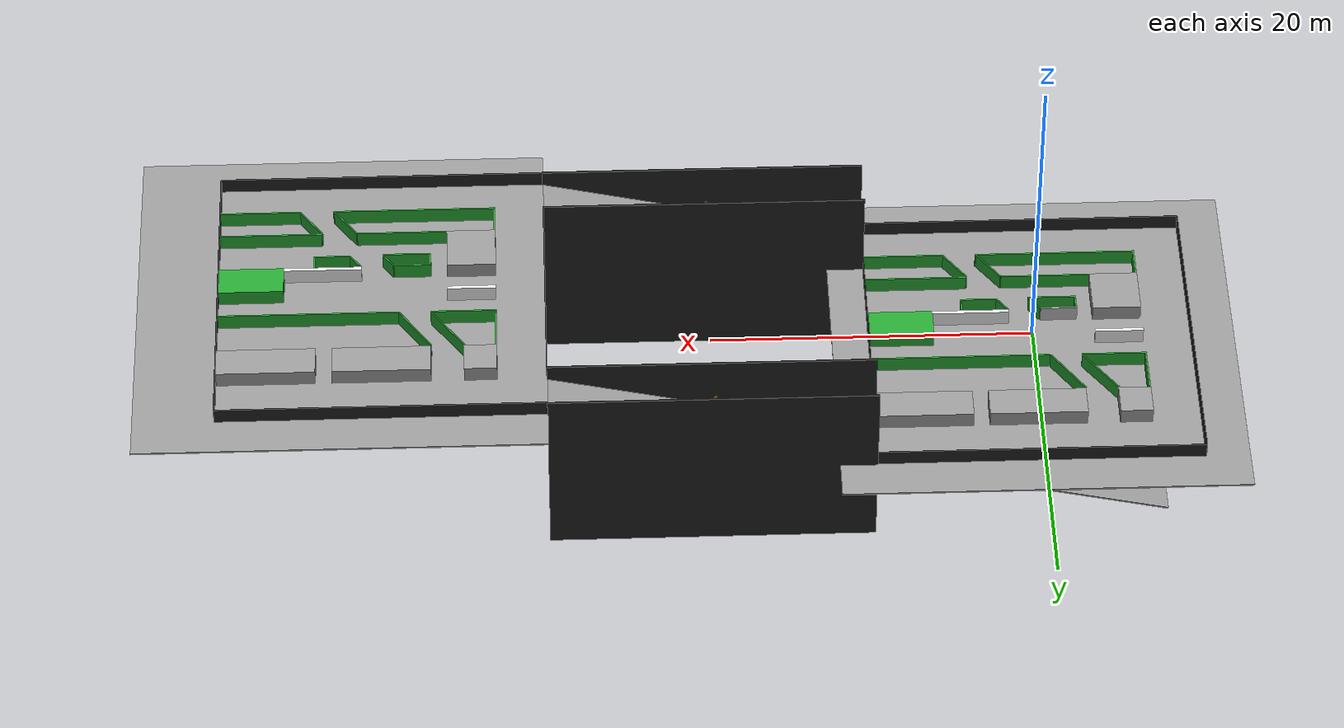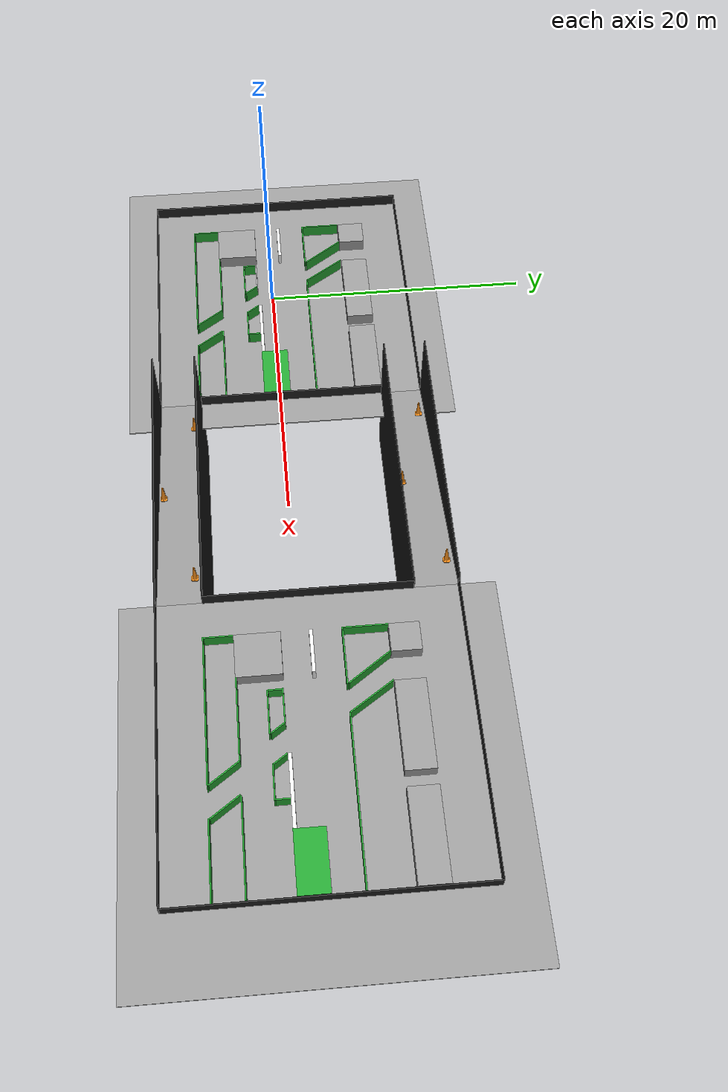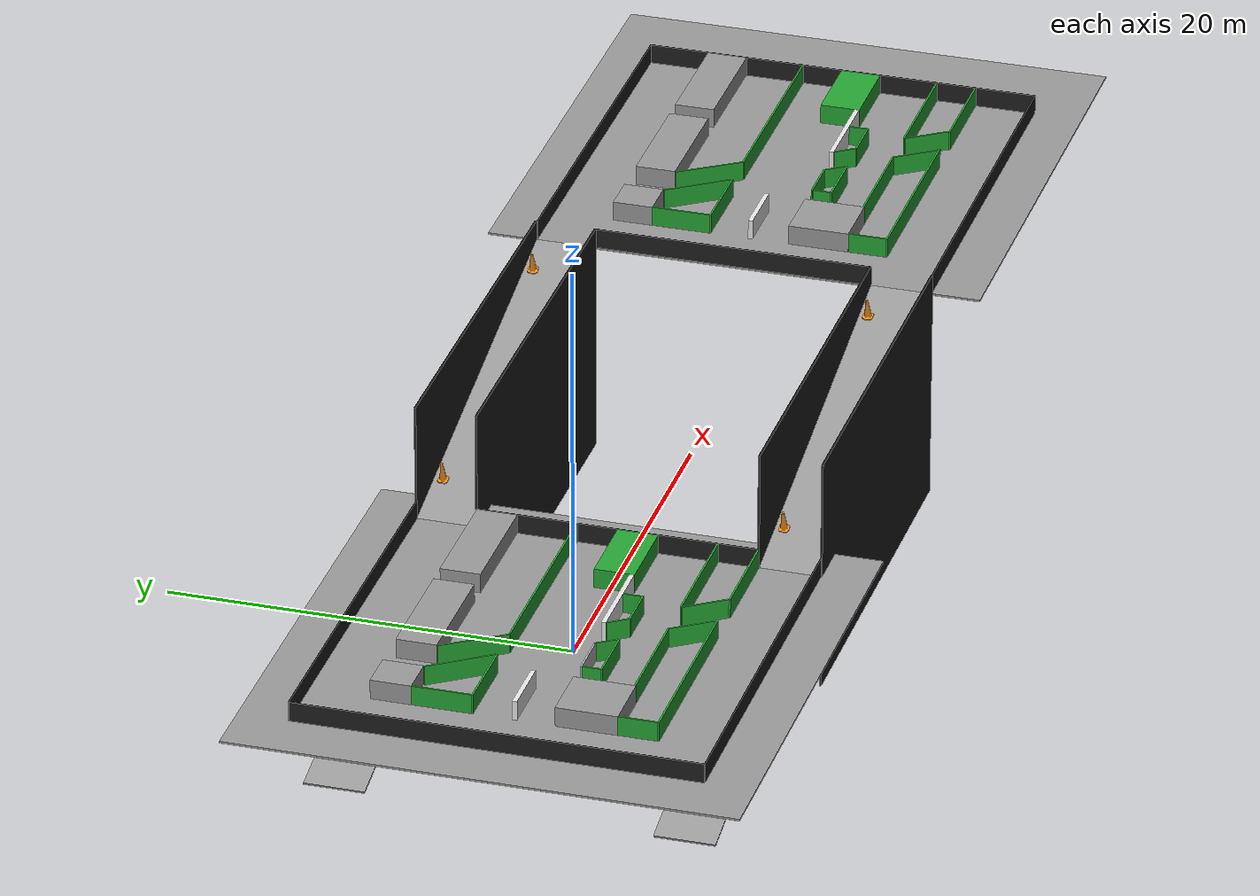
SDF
<?xml version="1.0"?>
<sdf version="1.6">
  <world name="default">
    <include>
      <uri>model://sun</uri>
    </include>
    <scene>
      <grid>true</grid>
      <shadows>false</shadows>
    </scene>

    <!-- orange_world model -->
    <include>
      <pose>0 0 0 0 0 0</pose>
      <uri>model://orange_world</uri>
      <name>orange_world</name>
    </include>
  </world>
</sdf>

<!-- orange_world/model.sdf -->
<sdf version="1.6">
  <model name="orange_world">
    <static>true</static>
    <!--first floor-->
    <link name="first_floor_ground">
      <pose>0 0.86 -0.05 0 0 0</pose>
      <visual name="visual">
        <geometry>
          <box>
            <size>25 25 0.1</size>
          </box>
        </geometry>
        <material>
          <script>
            <uri>file://media/materials/scripts/gazebo.material</uri>
            <name>Gazebo/Grey</name>
          </script>
        </material>
      </visual>
      <collision name="collision">
        <geometry>
          <box>
            <size>25 25 0.1</size>
          </box>
        </geometry>
        <surface>
          <friction>
            <ode>
              <mu>100</mu>
              <mu2>50</mu2>
            </ode>
          </friction>
          <bounce/>
          <contact>
            <ode/>
          </contact>
        </surface>
      </collision>
    </link>
    <link name="first_floor_wall1">
      <pose>7.1833 6.83868 0.5 0 0 0</pose>
      <visual name="visual">
        <geometry>
          <box>
            <size>5.99691 2.01004 1</size>
          </box>
        </geometry>
        <material>
          <script>
            <uri>file://media/materials/scripts/gazebo.material</uri>
            <name>Gazebo/Grey</name>
          </script>
        </material>
      </visual>
      <collision name="collision">
        <geometry>
          <box>
            <size>5.99691 2.01004 1</size>
          </box>
        </geometry>
      </collision>
    </link>
    <link name="first_floor_wall2">
      <pose>0.188308 6.83744 0.5 0 0 0</pose>
      <visual name="visual">
        <geometry>
          <box>
            <size>5.99691 2.01004 1</size>
          </box>
        </geometry>
        <material>
          <script>
            <uri>file://media/materials/scripts/gazebo.material</uri>
            <name>Gazebo/Grey</name>
          </script>
        </material>
      </visual>
      <collision name="collision">
        <geometry>
          <box>
            <size>5.99691 2.01004 1</size>
          </box>
        </geometry>
      </collision>
    </link>
    <link name="first_floor_wall3">
      <pose>-5.80476 6.84678 0.5 0 0 0</pose>
      <visual name="visual">
        <geometry>
          <box>
            <size>1.98724 2.01004 1</size>
          </box>
        </geometry>
        <material>
          <script>
            <uri>file://media/materials/scripts/gazebo.material</uri>
            <name>Gazebo/Grey</name>
          </script>
        </material>
      </visual>
      <collision name="collision">
        <geometry>
          <box>
            <size>1.98724 2.01004 1</size>
          </box>
        </geometry>
      </collision>
    </link>
    <link name="first_floor_wall4">
      <pose>8.18517 -0.162337 0.5 0 0 0</pose>
      <visual name="visual">
        <geometry>
          <box>
            <size>3.98346 2.01004 1</size>
          </box>
        </geometry>
        <material>
          <script>
            <uri>file://media/materials/scripts/gazebo.material</uri>
            <name>Gazebo/Green</name>
          </script>
        </material>
      </visual>
      <collision name="collision">
        <geometry>
          <box>
            <size>3.98346 2.01004 1</size>
          </box>
        </geometry>
      </collision>
    </link>
    <link name="first_floor_wall5">
      <pose>-5.30731 -2.64384 0.5 0 0 0</pose>
      <visual name="visual">
        <geometry>
          <box>
            <size>2.9898 3.03101 1</size>
          </box>
        </geometry>
        <material>
          <script>
            <uri>file://media/materials/scripts/gazebo.material</uri>
            <name>Gazebo/Grey</name>
          </script>
        </material>
      </visual>
      <collision name="collision">
        <geometry>
          <box>
            <size>2.9898 3.03101 1</size>
          </box>
        </geometry>
      </collision>
    </link>
    <link name="first_floor_wall6">
      <pose>-5.29666 0.826818 0.5 0 0 0</pose>
      <visual name="visual">
        <geometry>
          <box>
            <size>2.99398 0.232517 1</size>
          </box>
        </geometry>
        <material>
          <script>
            <uri>file://media/materials/scripts/gazebo.material</uri>
            <name>Gazebo/White</name>
          </script>
        </material>
      </visual>
      <collision name="collision">
        <geometry>
          <box>
            <size>2.99398 0.232517 1</size>
          </box>
        </geometry>
      </collision>
    </link>
    <link name="first_floor_wall7">
      <pose>3.81811 -1.03684 0.5 0 0 0</pose>
      <visual name="visual">
        <geometry>
          <box>
            <size>4.76615 0.232517 1</size>
          </box>
        </geometry>
        <material>
          <script>
            <uri>file://media/materials/scripts/gazebo.material</uri>
            <name>Gazebo/White</name>
          </script>
        </material>
      </visual>
      <collision name="collision">
        <geometry>
          <box>
            <size>4.76615 0.232517 1</size>
          </box>
        </geometry>
      </collision>
    </link>
    <link name="first_floor_wall8">
      <pose>4.67148 2.87704 0.5 0 0 0</pose>
      <visual name="visual">
        <geometry>
          <box>
            <size>11.008 0.087484 1</size>
          </box>
        </geometry>
        <material>
          <script>
            <uri>file://media/materials/scripts/gazebo.material</uri>
            <name>Gazebo/Green</name>
          </script>
        </material>
      </visual>
      <collision name="collision">
        <geometry>
          <box>
            <size>11.008 0.087484 1</size>
          </box>
        </geometry>
      </collision>
    </link>
    <link name="first_floor_wall9">
      <pose>-1.79832 -6.1092 0.5 0 0 0</pose>
      <visual name="visual">
        <geometry>
          <box>
            <size>10.003 0.087484 1</size>
          </box>
        </geometry>
        <material>
          <script>
            <uri>file://media/materials/scripts/gazebo.material</uri>
            <name>Gazebo/Green</name>
          </script>
        </material>
      </visual>
      <collision name="collision">
        <geometry>
          <box>
            <size>10.003 0.087484 1</size>
          </box>
        </geometry>
      </collision>
    </link>
    <link name="first_floor_wall10">
      <pose>7.68827 -6.11267 0.5 0 0 0</pose>
      <visual name="visual">
        <geometry>
          <box>
            <size>5.0278 0.087484 1</size>
          </box>
        </geometry>
        <material>
          <script>
            <uri>file://media/materials/scripts/gazebo.material</uri>
            <name>Gazebo/Green</name>
          </script>
        </material>
      </visual>
      <collision name="collision">
        <geometry>
          <box>
            <size>5.0278 0.087484 1</size>
          </box>
        </geometry>
      </collision>
    </link>
    <link name="first_floor_wall11">
      <pose>-4.81822 2.87687 0.5 0 0 0</pose>
      <visual name="visual">
        <geometry>
          <box>
            <size>3.98917 0.087484 1</size>
          </box>
        </geometry>
        <material>
          <script>
            <uri>file://media/materials/scripts/gazebo.material</uri>
            <name>Gazebo/Green</name>
          </script>
        </material>
      </visual>
      <collision name="collision">
        <geometry>
          <box>
            <size>3.98917 0.087484 1</size>
          </box>
        </geometry>
      </collision>
    </link>
    <link name="first_floor_wall12">
      <pose>-6.7515 -5.11034 0.5 0 0 -1.57059</pose>
      <visual name="visual">
        <geometry>
          <box>
            <size>1.91856 0.087484 1</size>
          </box>
        </geometry>
        <material>
          <script>
            <uri>file://media/materials/scripts/gazebo.material</uri>
            <name>Gazebo/Green</name>
          </script>
        </material>
      </visual>
      <collision name="collision">
        <geometry>
          <box>
            <size>1.91856 0.087484 1</size>
          </box>
        </geometry>
      </collision>
    </link>
    <link name="first_floor_wall13">
      <pose>3.24783 -2.11041 0.5 0 0 0</pose>
      <visual name="visual">
        <geometry>
          <box>
            <size>2.27943 0.087484 1</size>
          </box>
        </geometry>
        <material>
          <script>
            <uri>file://media/materials/scripts/gazebo.material</uri>
            <name>Gazebo/Green</name>
          </script>
        </material>
      </visual>
      <collision name="collision">
        <geometry>
          <box>
            <size>2.27943 0.087484 1</size>
          </box>
        </geometry>
      </collision>
    </link>
    <link name="first_floor_wall14">
      <pose>-1.69806 -1.20496 0.5 0 0 0</pose>
      <visual name="visual">
        <geometry>
          <box>
            <size>2.27943 0.087484 1</size>
          </box>
        </geometry>
      </visual>
      <collision name="collision">
        <geometry>
          <box>
            <size>2.27943 0.087484 1</size>
          </box>
        </geometry>
      </collision>
    </link>
    <link name="first_floor_wall15">
      <pose>-1.33218 -2.18828 0.5 0 0 0</pose>
      <visual name="visual">
        <geometry>
          <box>
            <size>2.95324 0.087484 1</size>
          </box>
        </geometry>
        <material>
          <script>
            <uri>file://media/materials/scripts/gazebo.material</uri>
            <name>Gazebo/Green</name>
          </script>
        </material>
      </visual>
      <collision name="collision">
        <geometry>
          <box>
            <size>2.95324 0.087484 1</size>
          </box>
        </geometry>
      </collision>
    </link>
    <link name="first_floor_wall16">
      <pose>-6.75403 4.38074 0.5 0 0 -1.57059</pose>
      <visual name="visual">
        <geometry>
          <box>
            <size>2.91475 0.087484 1</size>
          </box>
        </geometry>
        <material>
          <script>
            <uri>file://media/materials/scripts/gazebo.material</uri>
            <name>Gazebo/Green</name>
          </script>
        </material>
      </visual>
      <collision name="collision">
        <geometry>
          <box>
            <size>2.91475 0.087484 1</size>
          </box>
        </geometry>
      </collision>
    </link>
    <link name="first_floor_wall17">
      <pose>-3.85392 4.38882 0.5 0 0 -0.954791</pose>
      <visual name="visual">
        <geometry>
          <box>
            <size>3.49253 0.087484 1</size>
          </box>
        </geometry>
        <material>
          <script>
            <uri>file://media/materials/scripts/gazebo.material</uri>
            <name>Gazebo/Green</name>
          </script>
        </material>
      </visual>
      <collision name="collision">
        <geometry>
          <box>
            <size>3.49253 0.087484 1</size>
          </box>
        </geometry>
      </collision>
    </link>
    <link name="first_floor_wall18">
      <pose>-2.77675 -1.68969 0.5 0 0 -1.57059</pose>
      <visual name="visual">
        <geometry>
          <box>
            <size>0.888064 0.087484 1</size>
          </box>
        </geometry>
        <material>
          <script>
            <uri>file://media/materials/scripts/gazebo.material</uri>
            <name>Gazebo/Green</name>
          </script>
        </material>
      </visual>
      <collision name="collision">
        <geometry>
          <box>
            <size>0.888064 0.087484 1</size>
          </box>
        </geometry>
      </collision>
    </link>
    <link name="first_floor_wall19">
      <pose>4.33486 -1.60852 0.5 0 0 -1.57059</pose>
      <visual name="visual">
        <geometry>
          <box>
            <size>0.909365 0.087484 1</size>
          </box>
        </geometry>
        <material>
          <script>
            <uri>file://media/materials/scripts/gazebo.material</uri>
            <name>Gazebo/Green</name>
          </script>
        </material>
      </visual>
      <collision name="collision">
        <geometry>
          <box>
            <size>0.909365 0.087484 1</size>
          </box>
        </geometry>
      </collision>
    </link>
    <link name="first_floor_wall20">
      <pose>-1.85013 4.33135 0.5 0 0 -0.979786</pose>
      <visual name="visual">
        <geometry>
          <box>
            <size>3.49253 0.087484 1</size>
          </box>
        </geometry>
        <material>
          <script>
            <uri>file://media/materials/scripts/gazebo.material</uri>
            <name>Gazebo/Green</name>
          </script>
        </material>
      </visual>
      <collision name="collision">
        <geometry>
          <box>
            <size>3.49253 0.087484 1</size>
          </box>
        </geometry>
      </collision>
    </link>
    <link name="first_floor_wall21">
      <pose>4.53184 -5.09431 0.5 0 0 -0.954791</pose>
      <visual name="visual">
        <geometry>
          <box>
            <size>2.3271 0.087484 1</size>
          </box>
        </geometry>
        <material>
          <script>
            <uri>file://media/materials/scripts/gazebo.material</uri>
            <name>Gazebo/Green</name>
          </script>
        </material>
      </visual>
      <collision name="collision">
        <geometry>
          <box>
            <size>2.3271 0.087484 1</size>
          </box>
        </geometry>
      </collision>
    </link>
    <link name="first_floor_wall22">
      <pose>2.42071 -5.07999 0.5 0 0 -0.954791</pose>
      <visual name="visual">
        <geometry>
          <box>
            <size>2.40429 0.087484 1</size>
          </box>
        </geometry>
        <material>
          <script>
            <uri>file://media/materials/scripts/gazebo.material</uri>
            <name>Gazebo/Green</name>
          </script>
        </material>
      </visual>
      <collision name="collision">
        <geometry>
          <box>
            <size>2.40429 0.087484 1</size>
          </box>
        </geometry>
      </collision>
    </link>
    <link name="first_floor_wall23">
      <pose>1.79775 -1.6274 0.5 0 0 -0.954791</pose>
      <visual name="visual">
        <geometry>
          <box>
            <size>1.12858 0.087484 1</size>
          </box>
        </geometry>
        <material>
          <script>
            <uri>file://media/materials/scripts/gazebo.material</uri>
            <name>Gazebo/Green</name>
          </script>
        </material>
      </visual>
      <collision name="collision">
        <geometry>
          <box>
            <size>1.12858 0.087484 1</size>
          </box>
        </geometry>
      </collision>
    </link>
    <link name="first_floor_wall24">
      <pose>-0.213803 -1.65841 0.5 0 0 -0.954791</pose>
      <visual name="visual">
        <geometry>
          <box>
            <size>1.12858 0.087484 1</size>
          </box>
        </geometry>
        <material>
          <script>
            <uri>file://media/materials/scripts/gazebo.material</uri>
            <name>Gazebo/Green</name>
          </script>
        </material>
      </visual>
      <collision name="collision">
        <geometry>
          <box>
            <size>1.12858 0.087484 1</size>
          </box>
        </geometry>
      </collision>
    </link>
    <link name="first_floor_wall25">
      <pose>7.04565 -4.10442 0.5 0 0 0</pose>
      <visual name="visual">
        <geometry>
          <box>
            <size>6.27478 0.087484 1</size>
          </box>
        </geometry>
        <material>
          <script>
            <uri>file://media/materials/scripts/gazebo.material</uri>
            <name>Gazebo/Green</name>
          </script>
        </material>
      </visual>
      <collision name="collision">
        <geometry>
          <box>
            <size>6.27478 0.087484 1</size>
          </box>
        </geometry>
      </collision>
    </link>
    <link name="first_floor_wall26">
      <pose>-1.05427 -4.10983 0.5 0 0 0</pose>
      <visual name="visual">
        <geometry>
          <box>
            <size>5.52227 0.087484 1</size>
          </box>
        </geometry>
        <material>
          <script>
            <uri>file://media/materials/scripts/gazebo.material</uri>
            <name>Gazebo/Green</name>
          </script>
        </material>
      </visual>
      <collision name="collision">
        <geometry>
          <box>
            <size>5.52227 0.087484 1</size>
          </box>
        </geometry>
      </collision>
    </link>
    <link name="first_floor_wall27">
      <pose>-9.79546 0.83 0.5 0 0 0</pose>
      <visual name="visual">
        <geometry>
          <box>
            <size>0.043707 20.0311 1</size>
          </box>
        </geometry>
        <material>
          <script>
            <uri>file://media/materials/scripts/gazebo.material</uri>
            <name>Gazebo/Black</name>
          </script>
        </material>
      </visual>
      <collision name="collision">
        <geometry>
          <box>
            <size>0.043707 20.0311 1</size>
          </box>
        </geometry>
      </collision>
    </link>
    <link name="first_floor_wall28">
      <pose>10.2262 0.871969 0.5 0 0 0</pose>
      <visual name="visual">
        <geometry>
          <box>
            <size>0.043707 14.0311 1</size>
          </box>
        </geometry>
        <material>
          <script>
            <uri>file://media/materials/scripts/gazebo.material</uri>
            <name>Gazebo/Black</name>
          </script>
        </material>
      </visual>
      <collision name="collision">
        <geometry>
          <box>
            <size>0.043707 14.0311 1</size>
          </box>
        </geometry>
      </collision>
    </link>
    <link name="first_floor_wall29">
      <pose>0.222936 10.8607 0.5 0 0 -1.57002</pose>
      <visual name="visual">
        <geometry>
          <box>
            <size>0.043707 20.0311 1</size>
          </box>
        </geometry>
        <material>
          <script>
            <uri>file://media/materials/scripts/gazebo.material</uri>
            <name>Gazebo/Black</name>
          </script>
        </material>
      </visual>
      <collision name="collision">
        <geometry>
          <box>
            <size>0.043707 20.0311 1</size>
          </box>
        </geometry>
      </collision>
    </link>
    <link name="first_floor_wall30">
      <pose>0.217485 -9.19083 0.5 0 0 -1.57002</pose>
      <visual name="visual">
        <geometry>
          <box>
            <size>0.043707 20.0311 1</size>
          </box>
        </geometry>
        <material>
          <script>
            <uri>file://media/materials/scripts/gazebo.material</uri>
            <name>Gazebo/Black</name>
          </script>
        </material>
      </visual>
      <collision name="collision">
        <geometry>
          <box>
            <size>0.043707 20.0311 1</size>
          </box>
        </geometry>
      </collision>
    </link>
    <!--second floor-->
    <link name="second_floor_ground">
      <pose>42.6826865 0.86 4.95 0 0 0</pose>
      <visual name="visual">
        <geometry>
          <box>
            <size>25 25 0.1</size>
          </box>
        </geometry>
        <material>
          <script>
            <uri>file://media/materials/scripts/gazebo.material</uri>
            <name>Gazebo/Grey</name>
          </script>
        </material>
      </visual>
      <collision name="collision">
        <geometry>
          <box>
            <size>25 25 0.1</size>
          </box>
        </geometry>
        <surface>
          <friction>
            <ode>
              <mu>100</mu>
              <mu2>50</mu2>
            </ode>
          </friction>
          <bounce/>
          <contact>
            <ode/>
          </contact>
        </surface>
      </collision>
    </link>
    <link name="second_floor_wall1">
      <pose>47.1833 6.83868 5.5 0 0 0</pose>
      <visual name="visual">
        <geometry>
          <box>
            <size>5.99691 2.01004 1</size>
          </box>
        </geometry>
        <material>
          <script>
            <uri>file://media/materials/scripts/gazebo.material</uri>
            <name>Gazebo/Grey</name>
          </script>
        </material>
      </visual>
      <collision name="collision">
        <geometry>
          <box>
            <size>5.99691 2.01004 1</size>
          </box>
        </geometry>
      </collision>
    </link>
    <link name="second_floor_wall2">
      <pose>40.188308 6.83744 5.5 0 0 0</pose>
      <visual name="visual">
        <geometry>
          <box>
            <size>5.99691 2.01004 1</size>
          </box>
        </geometry>
        <material>
          <script>
            <uri>file://media/materials/scripts/gazebo.material</uri>
            <name>Gazebo/Grey</name>
          </script>
        </material>
      </visual>
      <collision name="collision">
        <geometry>
          <box>
            <size>5.99691 2.01004 1</size>
          </box>
        </geometry>
      </collision>
    </link>
    <link name="second_floor_wall3">
      <pose>34.19524 6.84678 5.5 0 0 0</pose>
      <visual name="visual">
        <geometry>
          <box>
            <size>1.98724 2.01004 1</size>
          </box>
        </geometry>
        <material>
          <script>
            <uri>file://media/materials/scripts/gazebo.material</uri>
            <name>Gazebo/Grey</name>
          </script>
        </material>
      </visual>
      <collision name="collision">
        <geometry>
          <box>
            <size>1.98724 2.01004 1</size>
          </box>
        </geometry>
      </collision>
    </link>
    <link name="second_floor_wall4">
      <pose>48.18517 -0.162337 5.5 0 0 0</pose>
      <visual name="visual">
        <geometry>
          <box>
            <size>3.98346 2.01004 1</size>
          </box>
        </geometry>
        <material>
          <script>
            <uri>file://media/materials/scripts/gazebo.material</uri>
            <name>Gazebo/Green</name>
          </script>
        </material>
      </visual>
      <collision name="collision">
        <geometry>
          <box>
            <size>3.98346 2.01004 1</size>
          </box>
        </geometry>
      </collision>
    </link>
    <link name="second_floor_wall5">
      <pose>34.69269 -2.64384 5.5 0 0 0</pose>
      <visual name="visual">
        <geometry>
          <box>
            <size>2.9898 3.03101 1</size>
          </box>
        </geometry>
        <material>
          <script>
            <uri>file://media/materials/scripts/gazebo.material</uri>
            <name>Gazebo/Grey</name>
          </script>
        </material>
      </visual>
      <collision name="collision">
        <geometry>
          <box>
            <size>2.9898 3.03101 1</size>
          </box>
        </geometry>
      </collision>
    </link>
    <link name="second_floor_wall6">
      <pose>34.70334 0.826818 5.5 0 0 0</pose>
      <visual name="visual">
        <geometry>
          <box>
            <size>2.99398 0.232517 1</size>
          </box>
        </geometry>
        <material>
          <script>
            <uri>file://media/materials/scripts/gazebo.material</uri>
            <name>Gazebo/White</name>
          </script>
        </material>
      </visual>
      <collision name="collision">
        <geometry>
          <box>
            <size>2.99398 0.232517 1</size>
          </box>
        </geometry>
      </collision>
    </link>
    <link name="second_floor_wall7">
      <pose>43.81811 -1.03684 5.5 0 0 0</pose>
      <visual name="visual">
        <geometry>
          <box>
            <size>4.76615 0.232517 1</size>
          </box>
        </geometry>
        <material>
          <script>
            <uri>file://media/materials/scripts/gazebo.material</uri>
            <name>Gazebo/White</name>
          </script>
        </material>
      </visual>
      <collision name="collision">
        <geometry>
          <box>
            <size>4.76615 0.232517 1</size>
          </box>
        </geometry>
      </collision>
    </link>
    <link name="second_floor_wall8">
      <pose>44.67148 2.87704 5.5 0 0 0</pose>
      <visual name="visual">
        <geometry>
          <box>
            <size>11.008 0.087484 1</size>
          </box>
        </geometry>
        <material>
          <script>
            <uri>file://media/materials/scripts/gazebo.material</uri>
            <name>Gazebo/Green</name>
          </script>
        </material>
      </visual>
      <collision name="collision">
        <geometry>
          <box>
            <size>11.008 0.087484 1</size>
          </box>
        </geometry>
      </collision>
    </link>
    <link name="second_floor_wall9">
      <pose>38.20168 -6.1092 5.5 0 0 0</pose>
      <visual name="visual">
        <geometry>
          <box>
            <size>10.003 0.087484 1</size>
          </box>
        </geometry>
        <material>
          <script>
            <uri>file://media/materials/scripts/gazebo.material</uri>
            <name>Gazebo/Green</name>
          </script>
        </material>
      </visual>
      <collision name="collision">
        <geometry>
          <box>
            <size>10.003 0.087484 1</size>
          </box>
        </geometry>
      </collision>
    </link>
    <link name="second_floor_wall10">
      <pose>47.68827 -6.11267 5.5 0 0 0</pose>
      <visual name="visual">
        <geometry>
          <box>
            <size>5.0278 0.087484 1</size>
          </box>
        </geometry>
        <material>
          <script>
            <uri>file://media/materials/scripts/gazebo.material</uri>
            <name>Gazebo/Green</name>
          </script>
        </material>
      </visual>
      <collision name="collision">
        <geometry>
          <box>
            <size>5.0278 0.087484 1</size>
          </box>
        </geometry>
      </collision>
    </link>
    <link name="second_floor_wall11">
      <pose>35.18178 2.87687 5.5 0 0 0</pose>
      <visual name="visual">
        <geometry>
          <box>
            <size>3.98917 0.087484 1</size>
          </box>
        </geometry>
        <material>
          <script>
            <uri>file://media/materials/scripts/gazebo.material</uri>
            <name>Gazebo/Green</name>
          </script>
        </material>
      </visual>
      <collision name="collision">
        <geometry>
          <box>
            <size>3.98917 0.087484 1</size>
          </box>
        </geometry>
      </collision>
    </link>
    <link name="second_floor_wall12">
      <pose>33.2485 -5.11034 5.5 0 0 -1.57059</pose>
      <visual name="visual">
        <geometry>
          <box>
            <size>1.91856 0.087484 1</size>
          </box>
        </geometry>
        <material>
          <script>
            <uri>file://media/materials/scripts/gazebo.material</uri>
            <name>Gazebo/Green</name>
          </script>
        </material>
      </visual>
      <collision name="collision">
        <geometry>
          <box>
            <size>1.91856 0.087484 1</size>
          </box>
        </geometry>
      </collision>
    </link>
    <link name="second_floor_wall13">
      <pose>43.24783 -2.11041 5.5 0 0 0</pose>
      <visual name="visual">
        <geometry>
          <box>
            <size>2.27943 0.087484 1</size>
          </box>
        </geometry>
        <material>
          <script>
            <uri>file://media/materials/scripts/gazebo.material</uri>
            <name>Gazebo/Green</name>
          </script>
        </material>
      </visual>
      <collision name="collision">
        <geometry>
          <box>
            <size>2.27943 0.087484 1</size>
          </box>
        </geometry>
      </collision>
    </link>
    <link name="second_floor_wall14">
      <pose>38.30194 -1.20496 5.5 0 0 0</pose>
      <visual name="visual">
        <geometry>
          <box>
            <size>2.27943 0.087484 1</size>
          </box>
        </geometry>
        <material>
          <script>
            <uri>file://media/materials/scripts/gazebo.material</uri>
            <name>Gazebo/Green</name>
          </script>
        </material>
      </visual>
      <collision name="collision">
        <geometry>
          <box>
            <size>2.27943 0.087484 1</size>
          </box>
        </geometry>
      </collision>
    </link>
    <link name="second_floor_wall15">
      <pose>38.66782 -2.18828 5.5 0 0 0</pose>
      <visual name="visual">
        <geometry>
          <box>
            <size>2.95324 0.087484 1</size>
          </box>
        </geometry>
        <material>
          <script>
            <uri>file://media/materials/scripts/gazebo.material</uri>
            <name>Gazebo/Green</name>
          </script>
        </material>
      </visual>
      <collision name="collision">
        <geometry>
          <box>
            <size>2.95324 0.087484 1</size>
          </box>
        </geometry>
      </collision>
    </link>
    <link name="second_floor_wall16">
      <pose>33.24597 4.38074 5.5 0 0 -1.57059</pose>
      <visual name="visual">
        <geometry>
          <box>
            <size>2.91475 0.087484 1</size>
          </box>
        </geometry>
        <material>
          <script>
            <uri>file://media/materials/scripts/gazebo.material</uri>
            <name>Gazebo/Green</name>
          </script>
        </material>
      </visual>
      <collision name="collision">
        <geometry>
          <box>
            <size>2.91475 0.087484 1</size>
          </box>
        </geometry>
      </collision>
    </link>
    <link name="second_floor_wall17">
      <pose>36.14608 4.38882 5.5 0 0 -0.954791</pose>
      <visual name="visual">
        <geometry>
          <box>
            <size>3.49253 0.087484 1</size>
          </box>
        </geometry>
        <material>
          <script>
            <uri>file://media/materials/scripts/gazebo.material</uri>
            <name>Gazebo/Green</name>
          </script>
        </material>
      </visual>
      <collision name="collision">
        <geometry>
          <box>
            <size>3.49253 0.087484 1</size>
          </box>
        </geometry>
      </collision>
    </link>
    <link name="second_floor_wall18">
      <pose>37.22325 -1.68969 5.5 0 0 -1.57059</pose>
      <visual name="visual">
        <geometry>
          <box>
            <size>0.888064 0.087484 1</size>
          </box>
        </geometry>
        <material>
          <script>
            <uri>file://media/materials/scripts/gazebo.material</uri>
            <name>Gazebo/Green</name>
          </script>
        </material>
      </visual>
      <collision name="collision">
        <geometry>
          <box>
            <size>0.888064 0.087484 1</size>
          </box>
        </geometry>
      </collision>
    </link>
    <link name="second_floor_wall19">
      <pose>44.33486 -1.60852 5.5 0 0 -1.57059</pose>
      <visual name="visual">
        <geometry>
          <box>
            <size>0.909365 0.087484 1</size>
          </box>
        </geometry>
        <material>
          <script>
            <uri>file://media/materials/scripts/gazebo.material</uri>
            <name>Gazebo/Green</name>
          </script>
        </material>
      </visual>
      <collision name="collision">
        <geometry>
          <box>
            <size>0.909365 0.087484 1</size>
          </box>
        </geometry>
      </collision>
    </link>
    <link name="second_floor_wall20">
      <pose>38.14987 4.33135 5.5 0 0 -0.979786</pose>
      <visual name="visual">
        <geometry>
          <box>
            <size>3.49253 0.087484 1</size>
          </box>
        </geometry>
        <material>
          <script>
            <uri>file://media/materials/scripts/gazebo.material</uri>
            <name>Gazebo/Green</name>
          </script>
        </material>
      </visual>
      <collision name="collision">
        <geometry>
          <box>
            <size>3.49253 0.087484 1</size>
          </box>
        </geometry>
      </collision>
    </link>
    <link name="second_floor_wall21">
      <pose>44.53184 -5.09431 5.5 0 0 -0.954791</pose>
      <visual name="visual">
        <geometry>
          <box>
            <size>2.3271 0.087484 1</size>
          </box>
        </geometry>
        <material>
          <script>
            <uri>file://media/materials/scripts/gazebo.material</uri>
            <name>Gazebo/Green</name>
          </script>
        </material>
      </visual>
      <collision name="collision">
        <geometry>
          <box>
            <size>2.3271 0.087484 1</size>
          </box>
        </geometry>
      </collision>
    </link>
    <link name="second_floor_wall22">
      <pose>42.42071 -5.07999 5.5 0 0 -0.954791</pose>
      <visual name="visual">
        <geometry>
          <box>
            <size>2.40429 0.087484 1</size>
          </box>
        </geometry>
        <material>
          <script>
            <uri>file://media/materials/scripts/gazebo.material</uri>
            <name>Gazebo/Green</name>
          </script>
        </material>
      </visual>
      <collision name="collision">
        <geometry>
          <box>
            <size>2.40429 0.087484 1</size>
          </box>
        </geometry>
      </collision>
    </link>
    <link name="second_floor_wall23">
      <pose>41.79775 -1.6274 5.5 0 0 -0.954791</pose>
      <visual name="visual">
        <geometry>
          <box>
            <size>1.12858 0.087484 1</size>
          </box>
        </geometry>
        <material>
          <script>
            <uri>file://media/materials/scripts/gazebo.material</uri>
            <name>Gazebo/Green</name>
          </script>
        </material>
      </visual>
      <collision name="collision">
        <geometry>
          <box>
            <size>1.12858 0.087484 1</size>
          </box>
        </geometry>
      </collision>
    </link>
    <link name="second_floor_wall24">
      <pose>39.786197 -1.65841 5.5 0 0 -0.954791</pose>
      <visual name="visual">
        <geometry>
          <box>
            <size>1.12858 0.087484 1</size>
          </box>
        </geometry>
        <material>
          <script>
            <uri>file://media/materials/scripts/gazebo.material</uri>
            <name>Gazebo/Green</name>
          </script>
        </material>
      </visual>
      <collision name="collision">
        <geometry>
          <box>
            <size>1.12858 0.087484 1</size>
          </box>
        </geometry>
      </collision>
    </link>
    <link name="second_floor_wall25">
      <pose>47.04565 -4.10442 5.5 0 0 0</pose>
      <visual name="visual">
        <geometry>
          <box>
            <size>6.27478 0.087484 1</size>
          </box>
        </geometry>
        <material>
          <script>
            <uri>file://media/materials/scripts/gazebo.material</uri>
            <name>Gazebo/Green</name>
          </script>
        </material>
      </visual>
      <collision name="collision">
        <geometry>
          <box>
            <size>6.27478 0.087484 1</size>
          </box>
        </geometry>
      </collision>
    </link>
    <link name="second_floor_wall26">
      <pose>38.94573 -4.10983 5.5 0 0 0</pose>
      <visual name="visual">
        <geometry>
          <box>
            <size>5.52227 0.087484 1</size>
          </box>
        </geometry>
        <material>
          <script>
            <uri>file://media/materials/scripts/gazebo.material</uri>
            <name>Gazebo/Green</name>
          </script>
        </material>
      </visual>
      <collision name="collision">
        <geometry>
          <box>
            <size>5.52227 0.087484 1</size>
          </box>
        </geometry>
      </collision>
    </link>
    <link name="second_floor_wall27">
      <pose>30.20454 0.867636 5.5 0 0 0</pose>
      <visual name="visual">
        <geometry>
          <box>
            <size>0.043707 14.0311 1</size>
          </box>
        </geometry>
        <material>
          <script>
            <uri>file://media/materials/scripts/gazebo.material</uri>
            <name>Gazebo/Black</name>
          </script>
        </material>
      </visual>
      <collision name="collision">
        <geometry>
          <box>
            <size>0.043707 14.0311 1</size>
          </box>
        </geometry>
      </collision>
    </link>
    <link name="second_floor_wall28">
      <pose>50.2262 0.871969 5.5 0 0 0</pose>
      <visual name="visual">
        <geometry>
          <box>
            <size>0.043707 20.0311 1</size>
          </box>
        </geometry>
        <material>
          <script>
            <uri>file://media/materials/scripts/gazebo.material</uri>
            <name>Gazebo/Black</name>
          </script>
        </material>
      </visual>
      <collision name="collision">
        <geometry>
          <box>
            <size>0.043707 20.0311 1</size>
          </box>
        </geometry>
      </collision>
    </link>
    <link name="second_floor_wall29">
      <pose>40.222936 10.8607 5.5 0 0 -1.57002</pose>
      <visual name="visual">
        <geometry>
          <box>
            <size>0.043707 20.0311 1</size>
          </box>
        </geometry>
        <material>
          <script>
            <uri>file://media/materials/scripts/gazebo.material</uri>
            <name>Gazebo/Black</name>
          </script>
        </material>
      </visual>
      <collision name="collision">
        <geometry>
          <box>
            <size>0.043707 20.0311 1</size>
          </box>
        </geometry>
      </collision>
    </link>
    <link name="second_floor_wall30">
      <pose>40.217485 -9.19083 5.5 0 0 -1.57002</pose>
      <visual name="visual">
        <geometry>
          <box>
            <size>0.043707 20.0311 1</size>
          </box>
        </geometry>
        <material>
          <script>
            <uri>file://media/materials/scripts/gazebo.material</uri>
            <name>Gazebo/Black</name>
          </script>
        </material>
      </visual>
      <collision name="collision">
        <geometry>
          <box>
            <size>0.043707 20.0311 1</size>
          </box>
        </geometry>
      </collision>
    </link>
    <!--slope-->
    <link name="slope1">
      <pose>11.2326865 9.37 0.2 0 -0.2455 0</pose>
      <visual name="visual">
        <geometry>
          <box>
            <size>39.1 3 0.1</size>
          </box>
        </geometry>
        <material>
          <script>
            <uri>file://media/materials/scripts/gazebo.material</uri>
            <name>Gazebo/Grey</name>
          </script>
        </material>
      </visual>
      <collision name="collision">
        <geometry>
          <box>
            <size>39.1 3 0.1</size>
          </box>
        </geometry>
        <surface>
          <friction>
            <ode>
              <mu>100</mu>
              <mu2>50</mu2>
            </ode>
          </friction>
          <bounce/>
          <contact>
            <ode/>
          </contact>
        </surface>
      </collision>
    </link>
    <link name="slope1_wall1">
      <pose>20.22 10.92 0 0 0 0</pose>
      <visual name="visual">
        <geometry>
          <box>
            <size>20 0.1 12</size>
          </box>
        </geometry>
        <material>
          <script>
            <uri>file://media/materials/scripts/gazebo.material</uri>
            <name>Gazebo/Black</name>
          </script>
        </material>
      </visual>
      <collision name="collision">
        <geometry>
          <box>
            <size>20 0.1 12</size>
          </box>
        </geometry>
      </collision>
    </link>
    <link name="slope1_wall2">
      <pose>20.22 7.89 0 0 0 0</pose>
      <visual name="visual">
        <geometry>
          <box>
            <size>20 0.1 12</size>
          </box>
        </geometry>
        <material>
          <script>
            <uri>file://media/materials/scripts/gazebo.material</uri>
            <name>Gazebo/Black</name>
          </script>
        </material>
      </visual>
      <collision name="collision">
        <geometry>
          <box>
            <size>20 0.1 12</size>
          </box>
        </geometry>
      </collision>
    </link>
    <link name="slope1_cone1">
      <pose>28 10.4 4.44 0 -0.2455 0</pose>
      <visual name="visual">
        <geometry>
          <mesh>
            <scale>10 10 10</scale>
            <uri>model://orange_world/meshes/construction_cone.dae</uri>
          </mesh>
        </geometry>
        <material>
          <script>
            <uri>file://media/materials/scripts/gazebo.material</uri>
            <name>Gazebo/Orange</name>
          </script>
        </material>
      </visual>
      <collision name="collision">
        <geometry>
          <mesh>
            <scale>10 10 10</scale>
            <uri>model://orange_world/meshes/construction_cone.dae</uri>
          </mesh>
        </geometry>
      </collision>
    </link>
    <link name="slope1_cone2">
      <pose>20.26 8.3 2.5 0 -0.2455 0</pose>
      <visual name="visual">
        <geometry>
          <mesh>
            <scale>10 10 10</scale>
            <uri>model://orange_world/meshes/construction_cone.dae</uri>
          </mesh>
        </geometry>
        <material>
          <script>
            <uri>file://media/materials/scripts/gazebo.material</uri>
            <name>Gazebo/Orange</name>
          </script>
        </material>
      </visual>
      <collision name="collision">
        <geometry>
          <mesh>
            <scale>10 10 10</scale>
            <uri>model://orange_world/meshes/construction_cone.dae</uri>
          </mesh>
        </geometry>
      </collision>
    </link>
    <link name="slope1_cone3">
      <pose>13 10.4 0.68 0 -0.2455 0</pose>
      <visual name="visual">
        <geometry>
          <mesh>
            <scale>10 10 10</scale>
            <uri>model://orange_world/meshes/construction_cone.dae</uri>
          </mesh>
        </geometry>
        <material>
          <script>
            <uri>file://media/materials/scripts/gazebo.material</uri>
            <name>Gazebo/Orange</name>
          </script>
        </material>
      </visual>
      <collision name="collision">
        <geometry>
          <mesh>
            <scale>10 10 10</scale>
            <uri>model://orange_world/meshes/construction_cone.dae</uri>
          </mesh>
        </geometry>
      </collision>
    </link>
    <link name="slope2">
      <pose>11.2326865 -7.65 0.2 0 -0.2455 0</pose>
      <visual name="visual">
        <geometry>
          <box>
            <size>39.1 3 0.1</size>
          </box>
        </geometry>
        <material>
          <script>
            <uri>file://media/materials/scripts/gazebo.material</uri>
            <name>Gazebo/Grey</name>
          </script>
        </material>
      </visual>
      <collision name="collision">
        <geometry>
          <box>
            <size>39.1 3 0.1</size>
          </box>
        </geometry>
        <surface>
          <friction>
            <ode>
              <mu>100</mu>
              <mu2>50</mu2>
            </ode>
          </friction>
          <bounce/>
          <contact>
            <ode/>
          </contact>
        </surface>
      </collision>
    </link>
    <link name="slope2_wall1">
      <pose>20.22 -9.2 0 0 0 0</pose>
      <visual name="visual">
        <geometry>
          <box>
            <size>20 0.1 12</size>
          </box>
        </geometry>
        <material>
          <script>
            <uri>file://media/materials/scripts/gazebo.material</uri>
            <name>Gazebo/Black</name>
          </script>
        </material>
      </visual>
      <collision name="collision">
        <geometry>
          <box>
            <size>20 0.1 12</size>
          </box>
        </geometry>
      </collision>
    </link>
    <link name="slope2_wall2">
      <pose>20.22 -6.1 0 0 0 0</pose>
      <visual name="visual">
        <geometry>
          <box>
            <size>20 0.1 12</size>
          </box>
        </geometry>
        <material>
          <script>
            <uri>file://media/materials/scripts/gazebo.material</uri>
            <name>Gazebo/Black</name>
          </script>
        </material>
      </visual>
      <collision name="collision">
        <geometry>
          <box>
            <size>20 0.1 12</size>
          </box>
        </geometry>
      </collision>
    </link>
    <link name="slope2_cone1">
      <pose>28 -6.6 4.44 0 -0.2455 0</pose>
      <visual name="visual">
        <geometry>
          <mesh>
            <scale>10 10 10</scale>
            <uri>model://orange_world/meshes/construction_cone.dae</uri>
          </mesh>
        </geometry>
        <material>
          <script>
            <uri>file://media/materials/scripts/gazebo.material</uri>
            <name>Gazebo/Orange</name>
          </script>
        </material>
      </visual>
      <collision name="collision">
        <geometry>
          <mesh>
            <scale>10 10 10</scale>
            <uri>model://orange_world/meshes/construction_cone.dae</uri>
          </mesh>
        </geometry>
      </collision>
    </link>
    <link name="slope2_cone2">
      <pose>20.26 -8.8 2.5 0 -0.2455 0</pose>
      <visual name="visual">
        <geometry>
          <mesh>
            <scale>10 10 10</scale>
            <uri>model://orange_world/meshes/construction_cone.dae</uri>
          </mesh>
        </geometry>
        <material>
          <script>
            <uri>file://media/materials/scripts/gazebo.material</uri>
            <name>Gazebo/Orange</name>
          </script>
        </material>
      </visual>
      <collision name="collision">
        <geometry>
          <mesh>
            <scale>10 10 10</scale>
            <uri>model://orange_world/meshes/construction_cone.dae</uri>
          </mesh>
        </geometry>
      </collision>
    </link>
    <link name="slope2_cone3">
      <pose>13 -6.6 0.68 0 -0.2455 0</pose>
      <visual name="visual">
        <geometry>
          <mesh>
            <scale>10 10 10</scale>
            <uri>model://orange_world/meshes/construction_cone.dae</uri>
          </mesh>
        </geometry>
        <material>
          <script>
            <uri>file://media/materials/scripts/gazebo.material</uri>
            <name>Gazebo/Orange</name>
          </script>
        </material>
      </visual>
      <collision name="collision">
        <geometry>
          <mesh>
            <scale>10 10 10</scale>
            <uri>model://orange_world/meshes/construction_cone.dae</uri>
          </mesh>
        </geometry>
      </collision>
    </link>
  </model>
</sdf>
